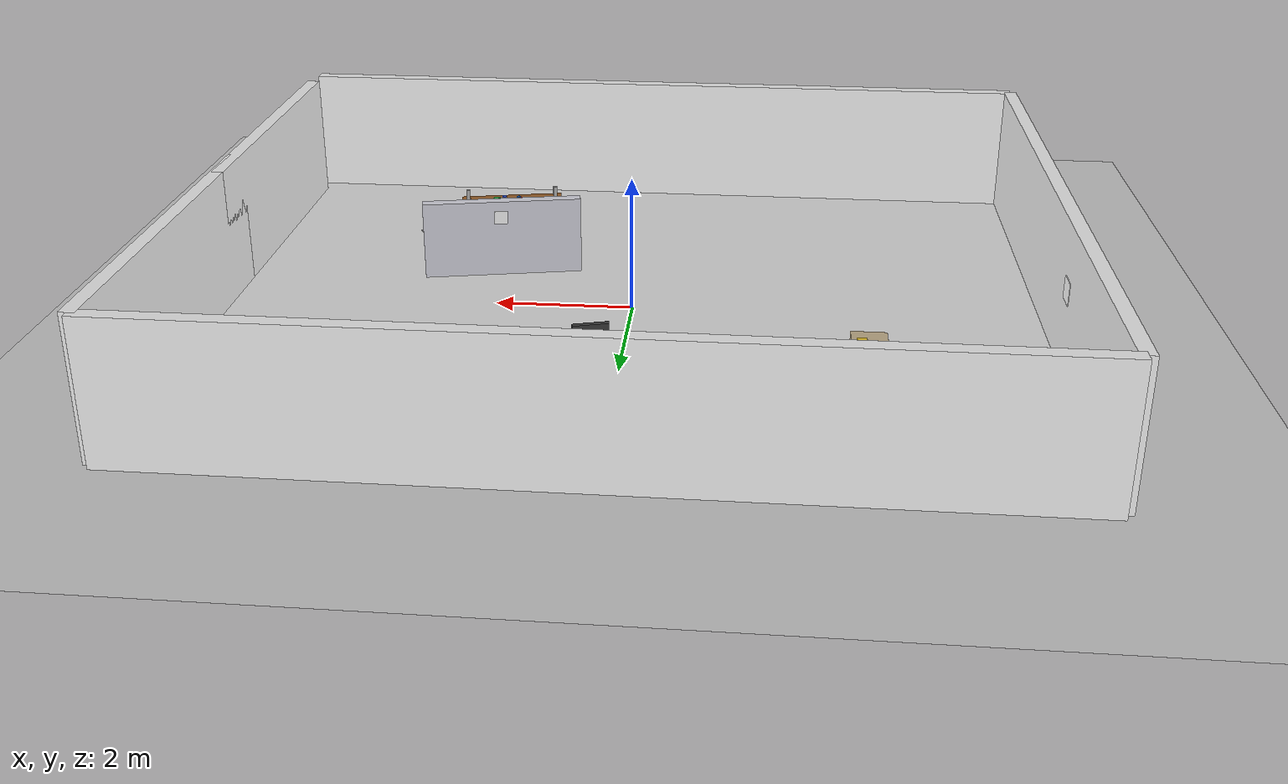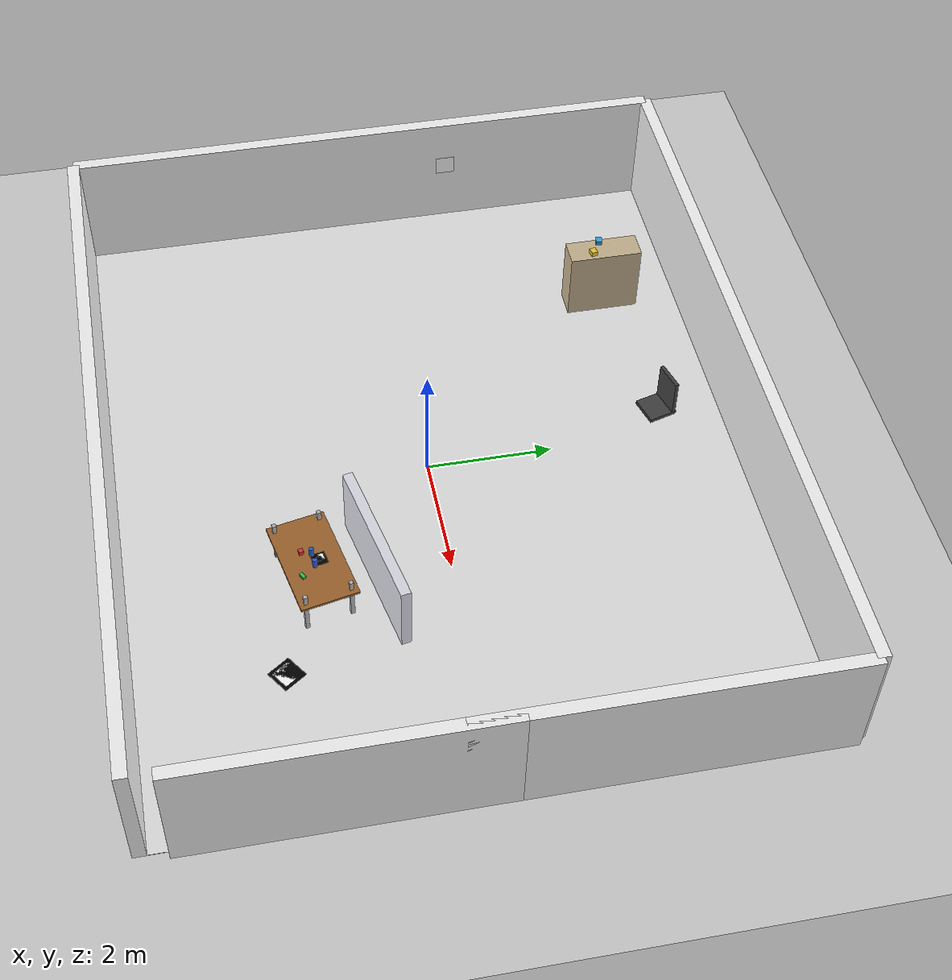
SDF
<?xml version="1.0" ?>
<sdf version="1.6">
  <world name="locobot_structured_world">
    <gravity>0 0 -9.81</gravity>
    <magnetic_field>6e-06 2.3e-05 -4.2e-05</magnetic_field>
    <atmosphere type="adiabatic"/>

    <physics type="ode">
      <real_time_update_rate>1000.0</real_time_update_rate>
      <max_step_size>0.001</max_step_size>
      <real_time_factor>1</real_time_factor>
    </physics>

    <scene>
      <ambient>0.55 0.55 0.55 1</ambient>
      <background>0.87 0.92 0.98 1</background>
      <shadows>true</shadows>
    </scene>

    <include>
      <uri>model://sun</uri>
    </include>

    <include>
      <uri>model://ground_plane</uri>
    </include>

    <gui fullscreen="0">
      <camera name="user_camera">
        <pose>7 -7 6 0 0.55 2.35</pose>
        <view_controller>orbit</view_controller>
      </camera>
    </gui>

    <model name="floor_zone">
      <static>true</static>
      <pose>0 0 0.005 0 0 0</pose>
      <link name="floor_link">
        <collision name="floor_collision">
          <geometry>
            <box>
              <size>12 10 0.01</size>
            </box>
          </geometry>
        </collision>
        <visual name="floor_visual">
          <geometry>
            <box>
              <size>12 10 0.01</size>
            </box>
          </geometry>
          <material>
            <ambient>0.82 0.82 0.82 1</ambient>
            <diffuse>0.88 0.88 0.88 1</diffuse>
          </material>
        </visual>
      </link>
    </model>

    <model name="north_wall">
      <static>true</static>
      <pose>0 5 1 0 0 0</pose>
      <link name="link">
        <collision name="collision">
          <geometry><box><size>12 0.2 2</size></box></geometry>
        </collision>
        <visual name="visual">
          <geometry><box><size>12 0.2 2</size></box></geometry>
          <material><ambient>0.95 0.95 0.95 1</ambient><diffuse>0.95 0.95 0.95 1</diffuse></material>
        </visual>
      </link>
    </model>

    <model name="south_wall">
      <static>true</static>
      <pose>0 -5 1 0 0 0</pose>
      <link name="link">
        <collision name="collision">
          <geometry><box><size>12 0.2 2</size></box></geometry>
        </collision>
        <visual name="visual">
          <geometry><box><size>12 0.2 2</size></box></geometry>
          <material><ambient>0.95 0.95 0.95 1</ambient><diffuse>0.95 0.95 0.95 1</diffuse></material>
        </visual>
      </link>
    </model>

    <model name="west_wall">
      <static>true</static>
      <pose>-6 0 1 0 0 0</pose>
      <link name="link">
        <collision name="collision">
          <geometry><box><size>0.2 10 2</size></box></geometry>
        </collision>
        <visual name="visual">
          <geometry><box><size>0.2 10 2</size></box></geometry>
          <material><ambient>0.95 0.95 0.95 1</ambient><diffuse>0.95 0.95 0.95 1</diffuse></material>
        </visual>
      </link>
    </model>

    <model name="east_wall_upper">
      <static>true</static>
      <pose>6 2.2 1 0 0 0</pose>
      <link name="link">
        <collision name="collision">
          <geometry><box><size>0.2 5.6 2</size></box></geometry>
        </collision>
        <visual name="visual">
          <geometry><box><size>0.2 5.6 2</size></box></geometry>
          <material><ambient>0.95 0.95 0.95 1</ambient><diffuse>0.95 0.95 0.95 1</diffuse></material>
        </visual>
      </link>
    </model>

    <model name="east_wall_lower">
      <static>true</static>
      <pose>6 -2.2 1 0 0 0</pose>
      <link name="link">
        <collision name="collision">
          <geometry><box><size>0.2 4.8 2</size></box></geometry>
        </collision>
        <visual name="visual">
          <geometry><box><size>0.2 4.8 2</size></box></geometry>
          <material><ambient>0.95 0.95 0.95 1</ambient><diffuse>0.95 0.95 0.95 1</diffuse></material>
        </visual>
      </link>
    </model>

    <model name="center_table">
      <static>true</static>
      <pose>2.1 -2.1 0.38 0 0 0.2</pose>
      <link name="table_link">
        <collision name="top_collision">
          <pose>0 0 0.37 0 0 0</pose>
          <geometry><box><size>1.6 0.9 0.04</size></box></geometry>
        </collision>
        <visual name="top_visual">
          <pose>0 0 0.37 0 0 0</pose>
          <geometry><box><size>1.6 0.9 0.04</size></box></geometry>
          <material><ambient>0.55 0.34 0.16 1</ambient><diffuse>0.62 0.39 0.18 1</diffuse></material>
        </visual>
        <collision name="leg1_collision"><pose>0.7 0.35 0.18 0 0 0</pose><geometry><box><size>0.06 0.06 0.72</size></box></geometry></collision>
        <collision name="leg2_collision"><pose>0.7 -0.35 0.18 0 0 0</pose><geometry><box><size>0.06 0.06 0.72</size></box></geometry></collision>
        <collision name="leg3_collision"><pose>-0.7 0.35 0.18 0 0 0</pose><geometry><box><size>0.06 0.06 0.72</size></box></geometry></collision>
        <collision name="leg4_collision"><pose>-0.7 -0.35 0.18 0 0 0</pose><geometry><box><size>0.06 0.06 0.72</size></box></geometry></collision>
        <visual name="leg1_visual"><pose>0.7 0.35 0.18 0 0 0</pose><geometry><box><size>0.06 0.06 0.72</size></box></geometry></visual>
        <visual name="leg2_visual"><pose>0.7 -0.35 0.18 0 0 0</pose><geometry><box><size>0.06 0.06 0.72</size></box></geometry></visual>
        <visual name="leg3_visual"><pose>-0.7 0.35 0.18 0 0 0</pose><geometry><box><size>0.06 0.06 0.72</size></box></geometry></visual>
        <visual name="leg4_visual"><pose>-0.7 -0.35 0.18 0 0 0</pose><geometry><box><size>0.06 0.06 0.72</size></box></geometry></visual>
      </link>
    </model>

    <model name="table_access_wall">
      <static>true</static>
      <pose>2.1 -1.15 0.6 0 0 0.2</pose>
      <link name="link">
        <collision name="collision">
          <geometry>
            <box>
              <size>2.4 0.16 1.2</size>
            </box>
          </geometry>
        </collision>
        <visual name="visual">
          <geometry>
            <box>
              <size>2.4 0.16 1.2</size>
            </box>
          </geometry>
          <material>
            <ambient>0.86 0.86 0.90 1</ambient>
            <diffuse>0.86 0.86 0.90 1</diffuse>
          </material>
        </visual>
      </link>
    </model>

    <model name="grasp_cube_red">
      <static>false</static>
      <pose>1.95 -2.25 0.805 0 0 0.15</pose>
      <link name="link">
        <inertial>
          <mass>0.12</mass>
          <inertia>
            <ixx>0.00005</ixx>
            <ixy>0.0</ixy>
            <ixz>0.0</ixz>
            <iyy>0.00005</iyy>
            <iyz>0.0</iyz>
            <izz>0.00005</izz>
          </inertia>
        </inertial>
        <collision name="collision">
          <geometry>
            <box>
              <size>0.07 0.07 0.07</size>
            </box>
          </geometry>
          <surface>
            <friction>
              <ode>
                <mu>0.8</mu>
                <mu2>0.8</mu2>
              </ode>
            </friction>
          </surface>
        </collision>
        <visual name="visual">
          <geometry>
            <box>
              <size>0.07 0.07 0.07</size>
            </box>
          </geometry>
          <material>
            <ambient>0.80 0.15 0.15 1</ambient>
            <diffuse>0.90 0.20 0.20 1</diffuse>
          </material>
        </visual>
      </link>
    </model>

    <model name="grasp_cylinder_blue">
      <static>false</static>
      <pose>2.22 -2.08 0.845 0 0 0</pose>
      <link name="link">
        <inertial>
          <mass>0.10</mass>
          <inertia>
            <ixx>0.00004</ixx>
            <ixy>0.0</ixy>
            <ixz>0.0</ixz>
            <iyy>0.00004</iyy>
            <iyz>0.0</iyz>
            <izz>0.00002</izz>
          </inertia>
        </inertial>
        <collision name="collision">
          <geometry>
            <cylinder>
              <radius>0.035</radius>
              <length>0.15</length>
            </cylinder>
          </geometry>
          <surface>
            <friction>
              <ode>
                <mu>0.7</mu>
                <mu2>0.7</mu2>
              </ode>
            </friction>
          </surface>
        </collision>
        <visual name="visual">
          <geometry>
            <cylinder>
              <radius>0.035</radius>
              <length>0.15</length>
            </cylinder>
          </geometry>
          <material>
            <ambient>0.15 0.25 0.80 1</ambient>
            <diffuse>0.20 0.35 0.90 1</diffuse>
          </material>
        </visual>
      </link>
    </model>

    <model name="grasp_box_green">
      <static>false</static>
      <pose>2.38 -2.28 0.79 0 0 0.5</pose>
      <link name="link">
        <inertial>
          <mass>0.08</mass>
          <inertia>
            <ixx>0.00003</ixx>
            <ixy>0.0</ixy>
            <ixz>0.0</ixz>
            <iyy>0.00003</iyy>
            <iyz>0.0</iyz>
            <izz>0.00002</izz>
          </inertia>
        </inertial>
        <collision name="collision">
          <geometry>
            <box>
              <size>0.10 0.06 0.04</size>
            </box>
          </geometry>
          <surface>
            <friction>
              <ode>
                <mu>0.9</mu>
                <mu2>0.9</mu2>
              </ode>
            </friction>
          </surface>
        </collision>
        <visual name="visual">
          <geometry>
            <box>
              <size>0.10 0.06 0.04</size>
            </box>
          </geometry>
          <material>
            <ambient>0.15 0.65 0.25 1</ambient>
            <diffuse>0.20 0.78 0.30 1</diffuse>
          </material>
        </visual>
      </link>
    </model>

    <model name="table_marker">
      <static>true</static>
      <pose>2.1 -2.0 0.772 0 0 0.2</pose>
      <link name="link">
        <collision name="collision">
          <geometry><box><size>0.22 0.22 0.004</size></box></geometry>
        </collision>
        <visual name="border_black">
          <geometry><box><size>0.22 0.22 0.004</size></box></geometry>
          <material><ambient>0 0 0 1</ambient><diffuse>0 0 0 1</diffuse></material>
        </visual>
        <visual name="inner_white">
          <pose>0 0 0.001 0 0 0</pose>
          <geometry><box><size>0.16 0.16 0.002</size></box></geometry>
          <material><ambient>1 1 1 1</ambient><diffuse>1 1 1 1</diffuse></material>
        </visual>
        <visual name="center_black">
          <pose>0 0 0.002 0 0 0</pose>
          <geometry><box><size>0.08 0.08 0.002</size></box></geometry>
          <material><ambient>0 0 0 1</ambient><diffuse>0 0 0 1</diffuse></material>
        </visual>
      </link>
    </model>

    <model name="wall_marker">
      <static>true</static>
      <pose>2.1 -1.06 0.95 0 0 0.2</pose>
      <link name="link">
        <collision name="collision">
          <geometry><box><size>0.20 0.01 0.20</size></box></geometry>
        </collision>
        <visual name="outer_white">
          <geometry><box><size>0.20 0.01 0.20</size></box></geometry>
          <material><ambient>1 1 1 1</ambient><diffuse>1 1 1 1</diffuse></material>
        </visual>
        <visual name="inner_black">
          <pose>0 0.001 0 0 0 0</pose>
          <geometry><box><size>0.14 0.004 0.14</size></box></geometry>
          <material><ambient>0 0 0 1</ambient><diffuse>0 0 0 1</diffuse></material>
        </visual>
      </link>
    </model>

    <model name="pavement_marker">
      <static>true</static>
      <pose>3.5 -2.7 0.012 0 0 0.6</pose>
      <link name="link">
        <collision name="collision">
          <geometry><box><size>0.40 0.40 0.004</size></box></geometry>
        </collision>
        <visual name="outer_black">
          <geometry><box><size>0.40 0.40 0.004</size></box></geometry>
          <material><ambient>0 0 0 1</ambient><diffuse>0 0 0 1</diffuse></material>
        </visual>
        <visual name="inner_white">
          <pose>0 0 0.001 0 0 0</pose>
          <geometry><box><size>0.30 0.30 0.002</size></box></geometry>
          <material><ambient>1 1 1 1</ambient><diffuse>1 1 1 1</diffuse></material>
        </visual>
      </link>
    </model>

    <model name="navigation_marker_zone">
      <static>true</static>
      <pose>4.3 -3.2 0.001 0 0 0</pose>
      <link name="link">
        <visual name="visual">
          <geometry><box><size>1.5 1.5 0.002</size></box></geometry>
          <material><ambient>0.20 0.60 0.20 1</ambient><diffuse>0.25 0.75 0.25 1</diffuse></material>
        </visual>
      </link>
    </model>

    <model name="side_shelf">
      <static>true</static>
      <pose>-3.2 3.6 0.6 0 0 1.57</pose>
      <link name="link">
        <collision name="collision">
          <geometry><box><size>1.2 0.45 1.2</size></box></geometry>
        </collision>
        <visual name="visual">
          <geometry><box><size>1.2 0.45 1.2</size></box></geometry>
          <material><ambient>0.72 0.66 0.52 1</ambient><diffuse>0.78 0.70 0.56 1</diffuse></material>
        </visual>
      </link>
    </model>

    <model name="storage_box_1">
      <static>false</static>
      <pose>-3.1 3.4 1.24 0 0 0.2</pose>
      <link name="link">
        <inertial><mass>0.08</mass><inertia><ixx>0.00003</ixx><iyy>0.00003</iyy><izz>0.00003</izz><ixy>0</ixy><ixz>0</ixz><iyz>0</iyz></inertia></inertial>
        <collision name="collision"><geometry><box><size>0.12 0.10 0.08</size></box></geometry></collision>
        <visual name="visual"><geometry><box><size>0.12 0.10 0.08</size></box></geometry><material><ambient>0.85 0.70 0.15 1</ambient><diffuse>0.92 0.78 0.18 1</diffuse></material></visual>
      </link>
    </model>

    <model name="storage_box_2">
      <static>false</static>
      <pose>-3.35 3.55 1.24 0 0 -0.15</pose>
      <link name="link">
        <inertial><mass>0.08</mass><inertia><ixx>0.00003</ixx><iyy>0.00003</iyy><izz>0.00003</izz><ixy>0</ixy><ixz>0</ixz><iyz>0</iyz></inertia></inertial>
        <collision name="collision"><geometry><box><size>0.12 0.10 0.08</size></box></geometry></collision>
        <visual name="visual"><geometry><box><size>0.12 0.10 0.08</size></box></geometry><material><ambient>0.15 0.55 0.80 1</ambient><diffuse>0.20 0.65 0.90 1</diffuse></material></visual>
      </link>
    </model>

    <model name="north_chair">
      <static>true</static>
      <pose>0.2 3.6 0.45 0 0 -1.3</pose>
      <link name="link">
        <collision name="seat_collision"><pose>0 0 0.45 0 0 0</pose><geometry><box><size>0.45 0.45 0.06</size></box></geometry></collision>
        <visual name="seat_visual"><pose>0 0 0.45 0 0 0</pose><geometry><box><size>0.45 0.45 0.06</size></box></geometry><material><ambient>0.20 0.20 0.20 1</ambient><diffuse>0.25 0.25 0.25 1</diffuse></material></visual>
        <collision name="back_collision"><pose>-0.18 0 0.78 0 0 0</pose><geometry><box><size>0.06 0.45 0.6</size></box></geometry></collision>
        <visual name="back_visual"><pose>-0.18 0 0.78 0 0 0</pose><geometry><box><size>0.06 0.45 0.6</size></box></geometry><material><ambient>0.20 0.20 0.20 1</ambient><diffuse>0.25 0.25 0.25 1</diffuse></material></visual>
      </link>
    </model>

    <model name="qr_wall_panel">
      <static>true</static>
      <pose>-5.88 1.4 1.15 0 0 1.57</pose>
      <link name="link">
        <collision name="collision">
          <geometry><box><size>0.32 0.01 0.32</size></box></geometry>
        </collision>
        <visual name="outer_white">
          <geometry><box><size>0.32 0.01 0.32</size></box></geometry>
          <material><ambient>1 1 1 1</ambient><diffuse>1 1 1 1</diffuse></material>
        </visual>
        <visual name="finder_tl">
          <pose>-0.09 0.001 0.09 0 0 0</pose>
          <geometry><box><size>0.08 0.004 0.08</size></box></geometry>
          <material><ambient>0 0 0 1</ambient><diffuse>0 0 0 1</diffuse></material>
        </visual>
        <visual name="finder_tr">
          <pose>0.09 0.001 0.09 0 0 0</pose>
          <geometry><box><size>0.08 0.004 0.08</size></box></geometry>
          <material><ambient>0 0 0 1</ambient><diffuse>0 0 0 1</diffuse></material>
        </visual>
        <visual name="finder_bl">
          <pose>-0.09 0.001 -0.09 0 0 0</pose>
          <geometry><box><size>0.08 0.004 0.08</size></box></geometry>
          <material><ambient>0 0 0 1</ambient><diffuse>0 0 0 1</diffuse></material>
        </visual>
        <visual name="data_block_1">
          <pose>0.00 0.001 0.00 0 0 0</pose>
          <geometry><box><size>0.06 0.004 0.06</size></box></geometry>
          <material><ambient>0 0 0 1</ambient><diffuse>0 0 0 1</diffuse></material>
        </visual>
        <visual name="data_block_2">
          <pose>0.08 0.001 -0.02 0 0 0</pose>
          <geometry><box><size>0.04 0.004 0.04</size></box></geometry>
          <material><ambient>0 0 0 1</ambient><diffuse>0 0 0 1</diffuse></material>
        </visual>
        <visual name="data_block_3">
          <pose>-0.02 0.001 -0.10 0 0 0</pose>
          <geometry><box><size>0.03 0.004 0.03</size></box></geometry>
          <material><ambient>0 0 0 1</ambient><diffuse>0 0 0 1</diffuse></material>
        </visual>
      </link>
    </model>

    <!-- Bottle on the center table for VLM target detection -->
    <model name="bottle">
      <static>false</static>
      <pose>2.0 -2.1 0.8 0 0 0</pose>
      <link name="link">
        <inertial>
          <mass>0.4</mass>
          <inertia><ixx>0.001</ixx><ixy>0</ixy><ixz>0</ixz><iyy>0.001</iyy><iyz>0</iyz><izz>0.0003</izz></inertia>
        </inertial>
        <collision name="collision">
          <geometry><cylinder><radius>0.035</radius><length>0.22</length></cylinder></geometry>
        </collision>
        <visual name="visual">
          <geometry><cylinder><radius>0.035</radius><length>0.22</length></cylinder></geometry>
          <material><ambient>0.1 0.4 0.8 1</ambient><diffuse>0.1 0.4 0.8 1</diffuse></material>
        </visual>
      </link>
    </model>

  </world>
</sdf>
